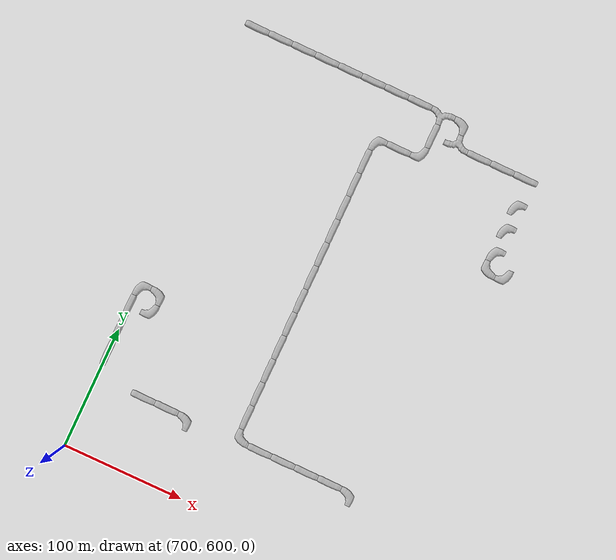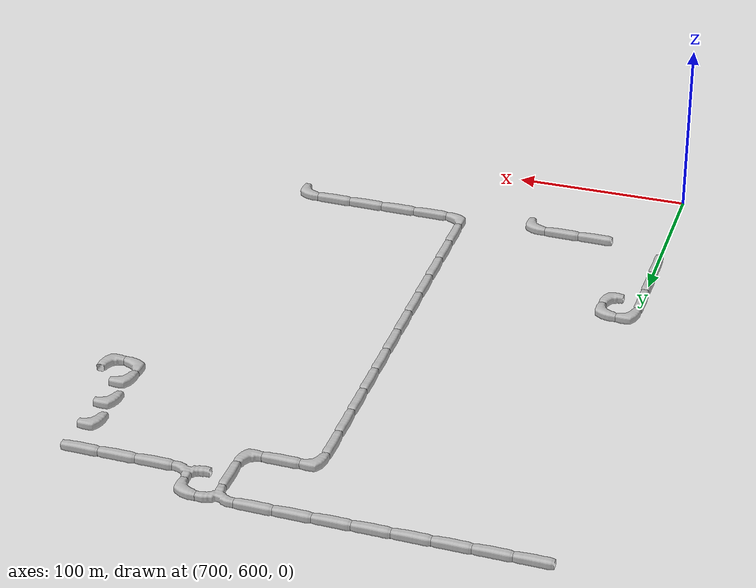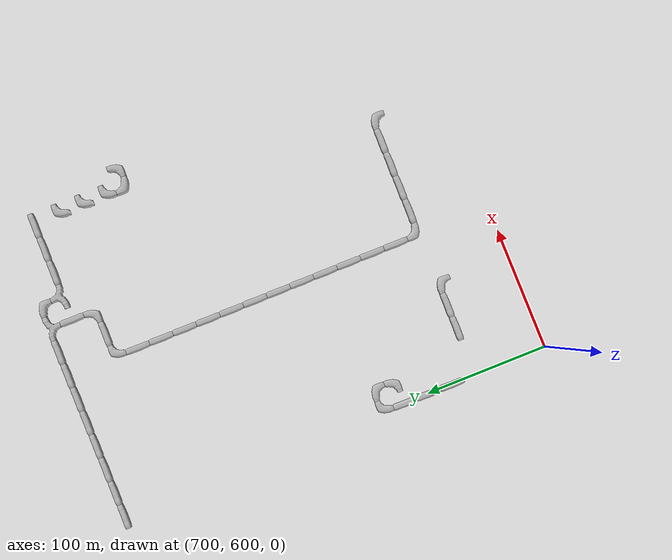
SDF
<sdf version="1.6">
 <world name="cave_16000_16">
  <include>
   <static>true</static>
   <name>cave_37_33</name>
   <pose>740 660 0 0 0 1.5707963267948966</pose>
   <uri>model://cave_straight_20m</uri>
  </include>
  <include>
   <static>true</static>
   <name>cave_38_33</name>
   <pose>760 660 0 0 0 1.5707963267948966</pose>
   <uri>model://cave_straight_20m</uri>
  </include>
  <include>
   <static>true</static>
   <name>cave_39_33</name>
   <pose>780 660 0 0 0 3.141592653589793</pose>
   <uri>model://cave_L_20m</uri>
  </include>
  <include>
   <static>true</static>
   <name>cave_46_33</name>
   <pose>920 660 0 0 0 3.141592653589793</pose>
   <uri>model://cave_L_20m</uri>
  </include>
  <include>
   <static>true</static>
   <name>cave_45_33</name>
   <pose>900 660 0 0 0 1.5707963267948966</pose>
   <uri>model://cave_straight_20m</uri>
  </include>
  <include>
   <static>true</static>
   <name>cave_44_33</name>
   <pose>880 660 0 0 0 1.5707963267948966</pose>
   <uri>model://cave_straight_20m</uri>
  </include>
  <include>
   <static>true</static>
   <name>cave_43_33</name>
   <pose>860 660 0 0 0 1.5707963267948966</pose>
   <uri>model://cave_straight_20m</uri>
  </include>
  <include>
   <static>true</static>
   <name>cave_42_33</name>
   <pose>840 660 0 0 0 1.5707963267948966</pose>
   <uri>model://cave_straight_20m</uri>
  </include>
  <include>
   <static>true</static>
   <name>cave_41_33</name>
   <pose>820 660 0 0 0 0.0</pose>
   <uri>model://cave_L_20m</uri>
  </include>
  <include>
   <static>true</static>
   <name>cave_41_34</name>
   <pose>820 680 0 0 0 0.0</pose>
   <uri>model://cave_straight_20m</uri>
  </include>
  <include>
   <static>true</static>
   <name>cave_41_35</name>
   <pose>820 700 0 0 0 0.0</pose>
   <uri>model://cave_straight_20m</uri>
  </include>
  <include>
   <static>true</static>
   <name>cave_41_36</name>
   <pose>820 720 0 0 0 0.0</pose>
   <uri>model://cave_straight_20m</uri>
  </include>
  <include>
   <static>true</static>
   <name>cave_41_37</name>
   <pose>820 740 0 0 0 0.0</pose>
   <uri>model://cave_straight_20m</uri>
  </include>
  <include>
   <static>true</static>
   <name>cave_41_38</name>
   <pose>820 760 0 0 0 0.0</pose>
   <uri>model://cave_straight_20m</uri>
  </include>
  <include>
   <static>true</static>
   <name>cave_41_39</name>
   <pose>820 780 0 0 0 0.0</pose>
   <uri>model://cave_straight_20m</uri>
  </include>
  <include>
   <static>true</static>
   <name>cave_41_40</name>
   <pose>820 800 0 0 0 0.0</pose>
   <uri>model://cave_straight_20m</uri>
  </include>
  <include>
   <static>true</static>
   <name>cave_41_41</name>
   <pose>820 820 0 0 0 0.0</pose>
   <uri>model://cave_straight_20m</uri>
  </include>
  <include>
   <static>true</static>
   <name>cave_41_42</name>
   <pose>820 840 0 0 0 0.0</pose>
   <uri>model://cave_straight_20m</uri>
  </include>
  <include>
   <static>true</static>
   <name>cave_41_43</name>
   <pose>820 860 0 0 0 0.0</pose>
   <uri>model://cave_straight_20m</uri>
  </include>
  <include>
   <static>true</static>
   <name>cave_41_44</name>
   <pose>820 880 0 0 0 0.0</pose>
   <uri>model://cave_straight_20m</uri>
  </include>
  <include>
   <static>true</static>
   <name>cave_41_45</name>
   <pose>820 900 0 0 0 0.0</pose>
   <uri>model://cave_straight_20m</uri>
  </include>
  <include>
   <static>true</static>
   <name>cave_41_46</name>
   <pose>820 920 0 0 0 -1.5707963267948966</pose>
   <uri>model://cave_L_20m</uri>
  </include>
  <include>
   <static>true</static>
   <name>cave_42_46</name>
   <pose>840 920 0 0 0 1.5707963267948966</pose>
   <uri>model://cave_straight_20m</uri>
  </include>
  <include>
   <static>true</static>
   <name>cave_43_46</name>
   <pose>860 920 0 0 0 1.5707963267948966</pose>
   <uri>model://cave_L_20m</uri>
  </include>
  <include>
   <static>true</static>
   <name>cave_43_47</name>
   <pose>860 940 0 0 0 0.0</pose>
   <uri>model://cave_straight_20m</uri>
  </include>
  <include>
   <static>true</static>
   <name>cave_43_48</name>
   <pose>860 960 0 0 0 3.141592653589793</pose>
   <uri>model://cave_3way_20m</uri>
  </include>
  <include>
   <static>true</static>
   <name>cave_44_48</name>
   <pose>880 960 0 0 0 3.141592653589793</pose>
   <uri>model://cave_L_20m</uri>
  </include>
  <include>
   <static>true</static>
   <name>cave_44_47</name>
   <pose>880 940 0 0 0 0.0</pose>
   <uri>model://cave_3way_20m</uri>
  </include>
  <include>
   <static>true</static>
   <name>cave_45_47</name>
   <pose>900 940 0 0 0 1.5707963267948966</pose>
   <uri>model://cave_straight_20m</uri>
  </include>
  <include>
   <static>true</static>
   <name>cave_46_47</name>
   <pose>920 940 0 0 0 1.5707963267948966</pose>
   <uri>model://cave_straight_20m</uri>
  </include>
  <include>
   <static>true</static>
   <name>cave_47_47</name>
   <pose>940 940 0 0 0 1.5707963267948966</pose>
   <uri>model://cave_straight_20m</uri>
  </include>
  <include>
   <static>true</static>
   <name>cave_47_44</name>
   <pose>940 880 0 0 0 -1.5707963267948966</pose>
   <uri>model://cave_L_20m</uri>
  </include>
  <include>
   <static>true</static>
   <name>cave_47_43</name>
   <pose>940 860 0 0 0 0.0</pose>
   <uri>model://cave_L_20m</uri>
  </include>
  <include>
   <static>true</static>
   <name>cave_48_43</name>
   <pose>960 860 0 0 0 1.5707963267948966</pose>
   <uri>model://cave_L_20m</uri>
  </include>
  <include>
   <static>true</static>
   <name>cave_47_45</name>
   <pose>940 900 0 0 0 -1.5707963267948966</pose>
   <uri>model://cave_L_20m</uri>
  </include>
  <include>
   <static>true</static>
   <name>cave_47_46</name>
   <pose>940 920 0 0 0 -1.5707963267948966</pose>
   <uri>model://cave_L_20m</uri>
  </include>
  <include>
   <static>true</static>
   <name>cave_42_48</name>
   <pose>840 960 0 0 0 1.5707963267948966</pose>
   <uri>model://cave_straight_20m</uri>
  </include>
  <include>
   <static>true</static>
   <name>cave_41_48</name>
   <pose>820 960 0 0 0 1.5707963267948966</pose>
   <uri>model://cave_straight_20m</uri>
  </include>
  <include>
   <static>true</static>
   <name>cave_40_48</name>
   <pose>800 960 0 0 0 1.5707963267948966</pose>
   <uri>model://cave_straight_20m</uri>
  </include>
  <include>
   <static>true</static>
   <name>cave_39_48</name>
   <pose>780 960 0 0 0 1.5707963267948966</pose>
   <uri>model://cave_straight_20m</uri>
  </include>
  <include>
   <static>true</static>
   <name>cave_38_48</name>
   <pose>760 960 0 0 0 1.5707963267948966</pose>
   <uri>model://cave_straight_20m</uri>
  </include>
  <include>
   <static>true</static>
   <name>cave_37_48</name>
   <pose>740 960 0 0 0 1.5707963267948966</pose>
   <uri>model://cave_straight_20m</uri>
  </include>
  <include>
   <static>true</static>
   <name>cave_36_48</name>
   <pose>720 960 0 0 0 1.5707963267948966</pose>
   <uri>model://cave_straight_20m</uri>
  </include>
  <include>
   <static>true</static>
   <name>cave_35_48</name>
   <pose>700 960 0 0 0 1.5707963267948966</pose>
   <uri>model://cave_straight_20m</uri>
  </include>
  <include>
   <static>true</static>
   <name>cave_35_34</name>
   <pose>700 680 0 0 0 0.0</pose>
   <uri>model://cave_straight_20m</uri>
  </include>
  <include>
   <static>true</static>
   <name>cave_35_35</name>
   <pose>700 700 0 0 0 0.0</pose>
   <uri>model://cave_straight_20m</uri>
  </include>
  <include>
   <static>true</static>
   <name>cave_35_36</name>
   <pose>700 720 0 0 0 0.0</pose>
   <uri>model://cave_straight_20m</uri>
  </include>
  <include>
   <static>true</static>
   <name>cave_35_37</name>
   <pose>700 740 0 0 0 -1.5707963267948966</pose>
   <uri>model://cave_L_20m</uri>
  </include>
  <include>
   <static>true</static>
   <name>cave_36_37</name>
   <pose>720 740 0 0 0 3.141592653589793</pose>
   <uri>model://cave_L_20m</uri>
  </include>
  <include>
   <static>true</static>
   <name>cave_36_36</name>
   <pose>720 720 0 0 0 1.5707963267948966</pose>
   <uri>model://cave_L_20m</uri>
  </include>
 </world>
</sdf>
